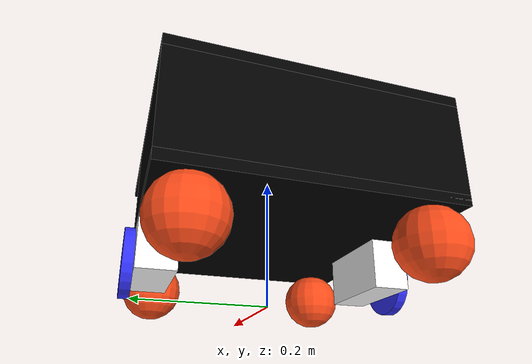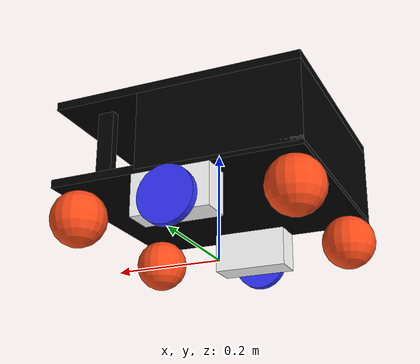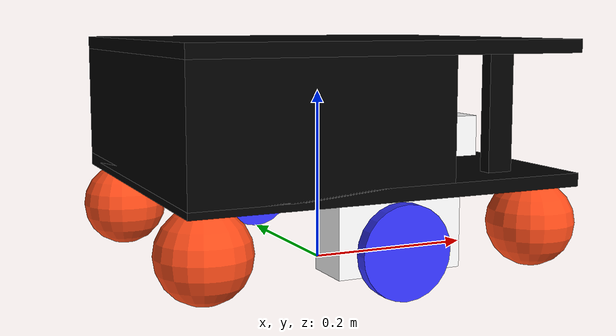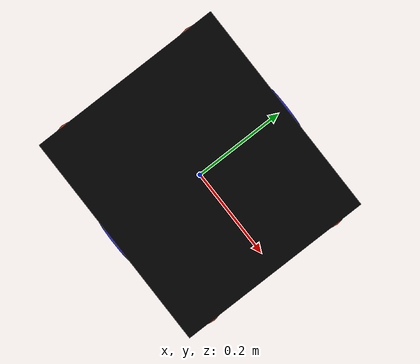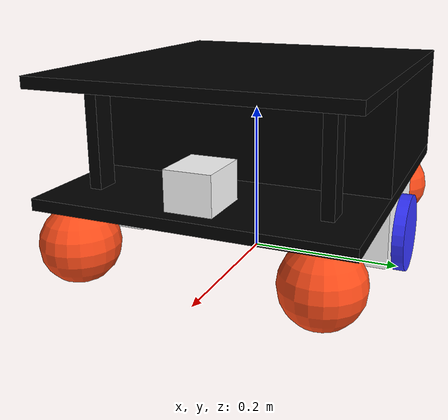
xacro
<?xml version="1.0"?>
<robot xmlns:xacro="http://www.ros.org/wiki/xacro"  >

    <xacro:include filename="inertial_macros.xacro" />

    <material name="white">
         <color rgba="1 1 1 1" />
    </material>

    <material name="orange">
         <color rgba="1 0.3 0.1 1" />
    </material>

    <material name="blue">
         <color rgba="0.2 0.2 1 1" />
    </material>

    <material name="black">
         <color rgba="0 0 0 1" />
    </material>

    <material name="red">
         <color rgba="1 0 0 1" />
    </material>

<!-- BASE LINK -->

    <link name="base_link">

    </link>
<!--BASE_FROOTPRINT LINK-->
    <joint name="base_footprint_joint" type="fixed">
        <parent link="base_link"/>
        <child link="base_footprint"/>
        <origin xyz="0 0 0" rpy="0 0 0"/>
    </joint>

    <link name="base_footprint">
    </link>

<!-- LOWER BODY -->
<joint name="lower_body_joint" type="fixed">
    <parent link="base_link"/>
    <child link="lower_body"/>
    <origin xyz="0 0 0.1"/>
</joint>

<link name="lower_body">

    <visual>
        <origin xyz="0 0 0.0075"/>
        <geometry>
            <box size="0.45 0.40 0.015"/>
        </geometry>
        <material name="black"/>
    </visual>

    <collision>
        <origin xyz="0 0 0.0075"/>
        <geometry>
            <box size="0.45 0.40 0.015"/>
        </geometry>
    </collision>

    <xacro:inertial_box
        mass="1.0"
        x="0.45"
        y="0.40"
        z="0.015">

        <origin xyz="0 0 0.0075"/>

    </xacro:inertial_box>

</link>

<gazebo reference="lower_body">
    <material>Gazebo/Black</material>
</gazebo>

<!--MIDDLE BODY-->
<joint name="middle_body_joint" type="fixed">
    <parent link="lower_body"/>
    <child link="middle_body"/>
    <origin xyz="-0.08 0 0.0775"/>
</joint>

<link name="middle_body">

    <visual>
        <geometry>
            <box size="0.29 0.40 0.14"/>
        </geometry>
        <material name="black"/>
    </visual>

    <collision>
        <geometry>
            <box size="0.29 0.40 0.14"/>
        </geometry>
    </collision>

    <xacro:inertial_box
        mass="2.0"
        x="0.29"
        y="0.40"
        z="0.14">

        <origin xyz="0 0 0"/>

    </xacro:inertial_box>

</link>

<gazebo reference="middle_body">
    <material>Gazebo/Black</material>
</gazebo>

<!--UPPER BODY-->
<joint name="upper_body_joint" type="fixed">
    <parent link="middle_body"/>
    <child link="upper_body"/>
    <origin xyz="0.08 0 0.0775"/>
</joint>

<link name="upper_body">

    <visual>
        <geometry>
            <box size="0.45 0.40 0.015"/>
        </geometry>

        <material name="black"/>
    </visual>

    <collision>
        <geometry>
            <box size="0.45 0.40 0.015"/>
        </geometry>
    </collision>

    <xacro:inertial_box
        mass="1.0"
        x="0.45"
        y="0.40"
        z="0.015">

        <origin xyz="0 0 0"/>

    </xacro:inertial_box>

</link>

<gazebo reference="upper_body">
    <material>Gazebo/Black</material>
</gazebo>

<!--LIDAR MOUNT-->
<joint name="lidar_mount_joint" type="fixed">
    <parent link="lower_body"/>
    <child link="lidar_mount"/>
    <origin xyz="0.170 0 0.040"/>
</joint>

<link name="lidar_mount">

    <visual>
        <geometry>
            <box size="0.07 0.06 0.05"/>
        </geometry>

        <material name="white"/>

    </visual>

    <collision>

        <geometry>
            <box size="0.07 0.06 0.05"/>
        </geometry>

    </collision>

    <xacro:inertial_box
        mass="0.20"
        x="0.07"
        y="0.06"
        z="0.05">

        <origin xyz="0 0 0"/>

    </xacro:inertial_box>

</link>

<gazebo reference="lidar_mount">
    <material>Gazebo/White</material>
</gazebo>

<!--front_left_pillar_joint-->
<joint name="front_left_pillar_joint" type="fixed">
    <parent link="lower_body"/>
    <child link="front_left_pillar"/>
    <origin xyz="0.15 0.15 0.085"/>
</joint>

<link name="front_left_pillar">

    <visual>
        <geometry>
            <box size="0.03 0.016 0.14"/>
        </geometry>
        <material name="black"/>
    </visual>

    <collision>
        <geometry>
            <box size="0.03 0.016 0.14"/>
        </geometry>
    </collision>

    <xacro:inertial_box
        mass="0.15"
        x="0.03"
        y="0.016"
        z="0.14">
        <origin xyz="0 0 0"/>
    </xacro:inertial_box>

</link>

<gazebo reference="front_left_pillar">
    <material>Gazebo/Black</material>
</gazebo>

<!--front_right_pillar_joint-->
<joint name="front_right_pillar_joint" type="fixed">
    <parent link="lower_body"/>
    <child link="front_right_pillar"/>
    <origin xyz="0.15 -0.15 0.085"/>
</joint>

<link name="front_right_pillar">

    <visual>
        <geometry>
            <box size="0.03 0.016 0.14"/>
        </geometry>
        <material name="black"/>
    </visual>

    <collision>
        <geometry>
            <box size="0.03 0.016 0.14"/>
        </geometry>
    </collision>

    <xacro:inertial_box
        mass="0.15"
        x="0.03"
        y="0.016"
        z="0.14">
        <origin xyz="0 0 0"/>
    </xacro:inertial_box>

</link>

<gazebo reference="front_right_pillar">
    <material>Gazebo/Black</material>
</gazebo>

<!-- LEFT MOTOR -->
<joint name="left_motor_joint" type="fixed">
    <parent link="lower_body"/>
    <child link="left_motor"/>
    <origin xyz="0 0.1725 -0.037"/>
</joint>

<link name="left_motor">

    <visual>
        <origin xyz="0 0 0"/>
        <geometry>
            <box size="0.14 0.055 0.074"/>
        </geometry>
        <material name="white"/>
    </visual>

    <collision>
        <origin xyz="0 0 0"/>
        <geometry>
            <box size="0.14 0.055 0.074"/>
        </geometry>
    </collision>

    <xacro:inertial_box
        mass="0.5"
        x="0.14"
        y="0.055"
        z="0.074">

        <origin xyz="0 0 0"/>

    </xacro:inertial_box>

</link>

<gazebo reference="left_motor">
    <material>Gazebo/White</material>
</gazebo>

<!-- RIGHT MOTOR -->
<joint name="right_motor_joint" type="fixed">
    <parent link="lower_body"/>
    <child link="right_motor"/>
    <origin xyz="0 -0.1725 -0.037"/>
</joint>

<link name="right_motor">

    <visual>
        <origin xyz="0 0 0"/>
        <geometry>
            <box size="0.14 0.055 0.074"/>
        </geometry>
        <material name="white"/>
    </visual>

    <collision>
        <origin xyz="0 0 0"/>
        <geometry>
            <box size="0.14 0.055 0.074"/>
        </geometry>
    </collision>

    <xacro:inertial_box
        mass="0.5"
        x="0.14"
        y="0.055"
        z="0.074">

        <origin xyz="0 0 0"/>

    </xacro:inertial_box>

</link>

<gazebo reference="right_motor">
    <material>Gazebo/White</material>
</gazebo>

<!-- LEFT WHEEL-->
<joint name="left_wheel_joint" type="continuous">
    <parent link="base_link"/>
    <child link="left_wheel"/>
    <origin xyz="0 0.2075 0.05" rpy="-${pi/2} 0 0"/>
    <axis xyz="0 0 1"/>
</joint>

<link name="left_wheel">

    <visual>
        <geometry>
            <cylinder radius="0.05" length="0.015"/>
        </geometry>
        <material name="blue"/>
    </visual>

    <collision>
        <geometry>
            <cylinder radius="0.047" length="0.015"/>
        </geometry>
    </collision>

    <xacro:inertial_cylinder
        mass="0.25"
        radius="0.05"
        length="0.015">

        <origin xyz="0 0 0"/>

    </xacro:inertial_cylinder>

</link>

<gazebo reference="left_wheel">
    <material>Gazebo/Blue</material>
</gazebo>

<!-- RIGHT WHEEL -->
<joint name="right_wheel_joint" type="continuous">
    <parent link="base_link"/>
    <child link="right_wheel"/>
    <origin xyz="0 -0.2075 0.05" rpy="${pi/2} 0 0"/>
    <axis xyz="0 0 -1"/>
</joint>

<link name="right_wheel">

    <visual>
        <geometry>
            <cylinder radius="0.05" length="0.015"/>
        </geometry>
        <material name="blue"/>
    </visual>

    <collision>
        <geometry>
            <cylinder radius="0.05" length="0.015"/>
        </geometry>
    </collision>

    <xacro:inertial_cylinder
        mass="0.25"
        radius="0.05"
        length="0.015">

        <origin xyz="0 0 0"/>

    </xacro:inertial_cylinder>

</link>

<gazebo reference="right_wheel">
    <material>Gazebo/Blue</material>
</gazebo>

<!-- FRONT LEFT CASTER -->
<joint name="caster_front_left_joint" type="fixed">
    <parent link="lower_body"/>
    <child link="caster_front_left"/>
    <origin xyz="0.195 0.155 -0.045"/>
</joint>

<link name="caster_front_left">

    <visual>
        <geometry>
            <sphere radius="0.05"/>
        </geometry>
        <material name="orange"/>
    </visual>

    <collision>
        <geometry>
            <sphere radius="0.05"/>
        </geometry>
    </collision>

    <xacro:inertial_sphere mass="0.10" radius="0.05">
        <origin xyz="0 0 0"/>
    </xacro:inertial_sphere>

</link>

<gazebo reference="caster_front_left">
    <material>Gazebo/Orange</material>
    <mu1 value="0.001"/>
    <mu2 value="0.001"/>
</gazebo>

<!-- FRONT RIGHT CASTER -->
<joint name="caster_front_right_joint" type="fixed">
    <parent link="lower_body"/>
    <child link="caster_front_right"/>
    <origin xyz="0.195 -0.155 -0.045"/>
</joint>

<link name="caster_front_right">

    <visual>
        <geometry>
            <sphere radius="0.05"/>
        </geometry>
        <material name="orange"/>
    </visual>

    <collision>
        <geometry>
            <sphere radius="0.05"/>
        </geometry>
    </collision>

    <xacro:inertial_sphere mass="0.10" radius="0.05">
        <origin xyz="0 0 0"/>
    </xacro:inertial_sphere>

</link>

<gazebo reference="caster_front_right">
    <material>Gazebo/Orange</material>
    <mu1 value="0.001"/>
    <mu2 value="0.001"/>
</gazebo>

<!-- REAR LEFT CASTER -->
<joint name="caster_rear_left_joint" type="fixed">
    <parent link="lower_body"/>
    <child link="caster_rear_left"/>
    <origin xyz="-0.195 0.155 -0.045"/>
</joint>

<link name="caster_rear_left">

    <visual>
        <geometry>
            <sphere radius="0.05"/>
        </geometry>
        <material name="orange"/>
    </visual>

    <collision>
        <geometry>
            <sphere radius="0.05"/>
        </geometry>
    </collision>

    <xacro:inertial_sphere mass="0.10" radius="0.05">
        <origin xyz="0 0 0"/>
    </xacro:inertial_sphere>

</link>

<gazebo reference="caster_rear_left">
    <material>Gazebo/Orange</material>
    <mu1 value="0.001"/>
    <mu2 value="0.001"/>
</gazebo>

<!-- REAR RIGHT CASTER -->
<joint name="caster_rear_right_joint" type="fixed">
    <parent link="lower_body"/>
    <child link="caster_rear_right"/>
    <origin xyz="-0.195 -0.155 -0.045"/>
</joint>

<link name="caster_rear_right">

    <visual>
        <geometry>
            <sphere radius="0.05"/>
        </geometry>
        <material name="orange"/>
    </visual>

    <collision>
        <geometry>
            <sphere radius="0.05"/>
        </geometry>
    </collision>

    <xacro:inertial_sphere mass="0.10" radius="0.05">
        <origin xyz="0 0 0"/>
    </xacro:inertial_sphere>

</link>

<gazebo reference="caster_rear_right">
    <material>Gazebo/Orange</material>
    <mu1 value="0.001"/>
    <mu2 value="0.001"/>
</gazebo>

</robot>
